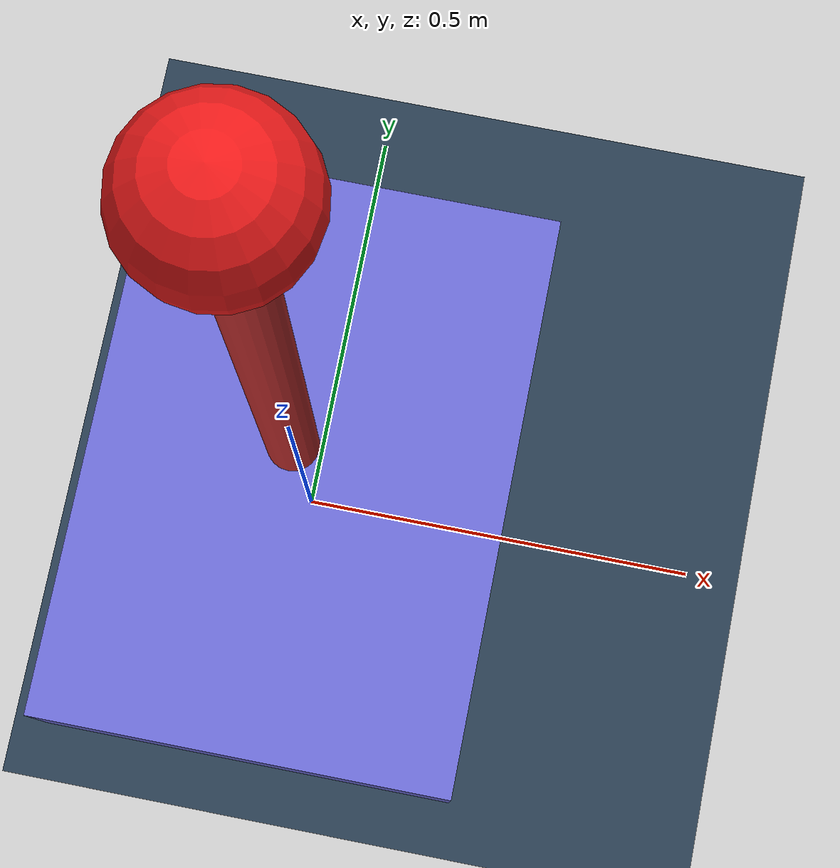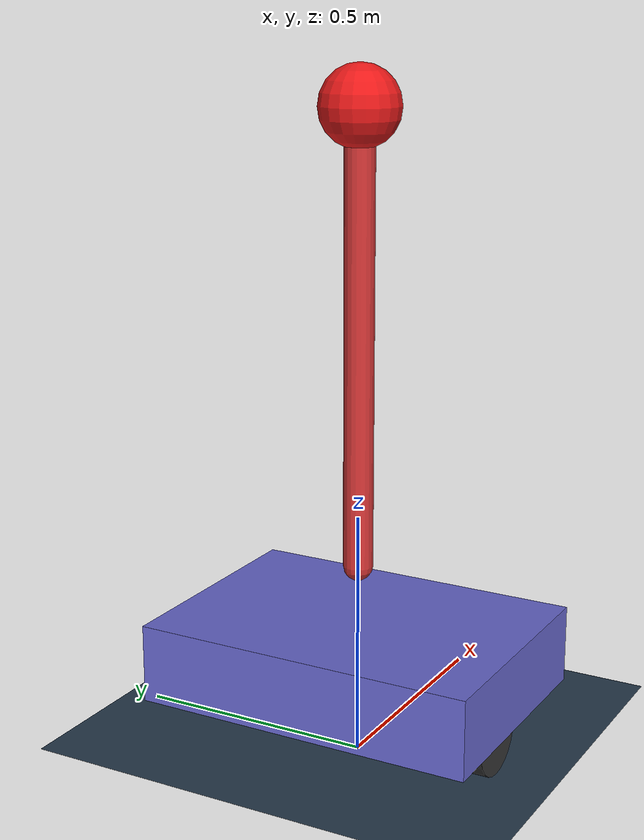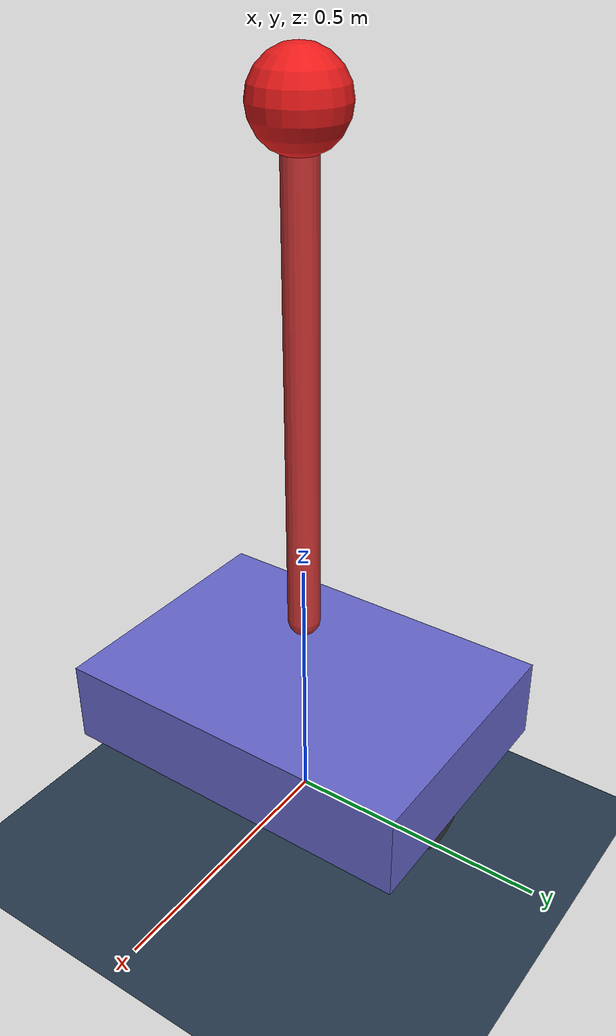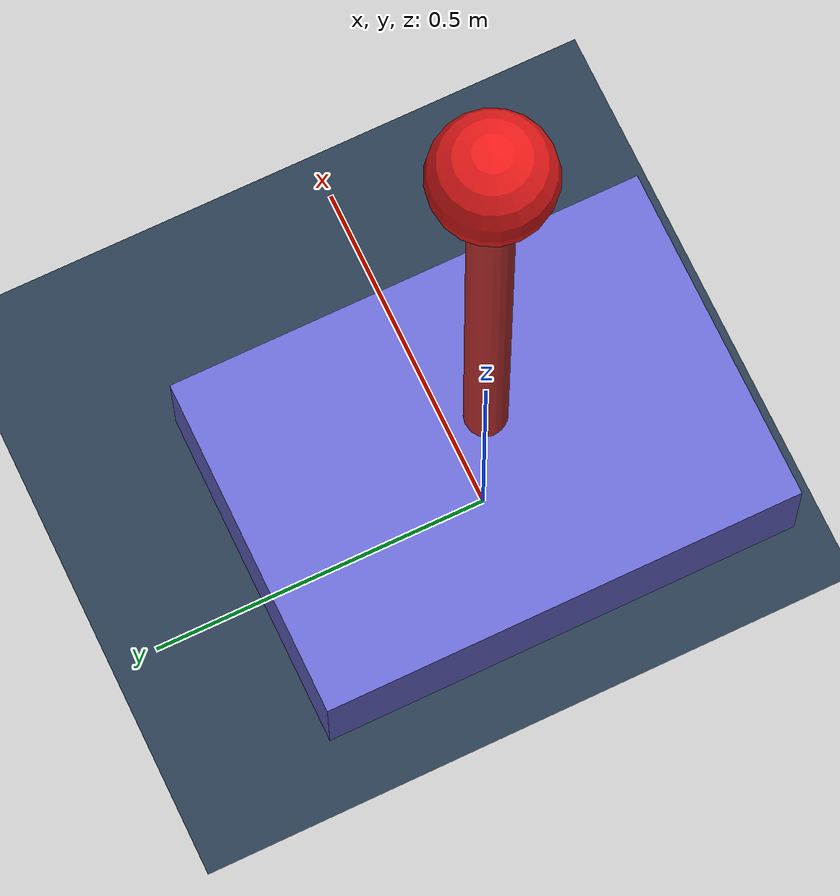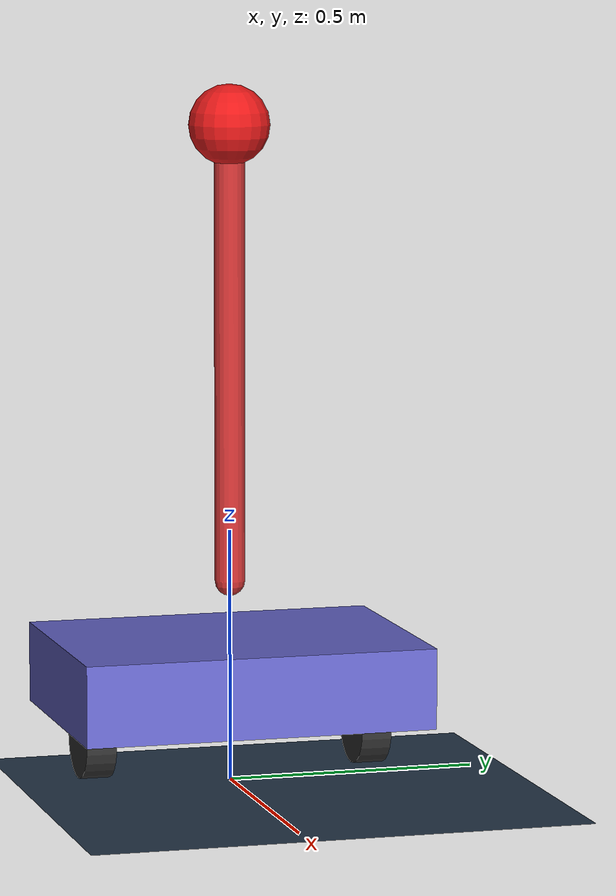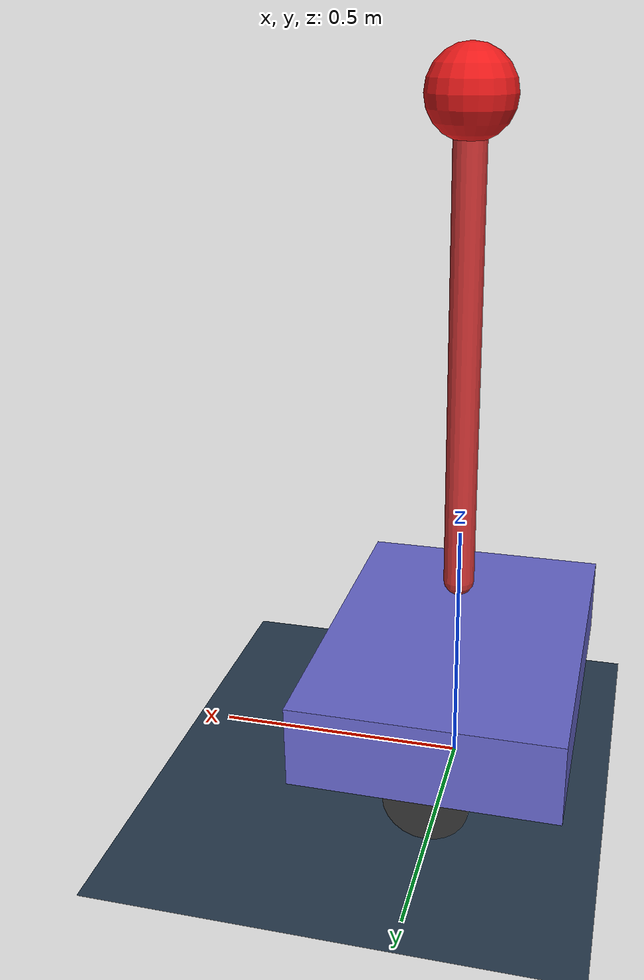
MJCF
<?xml version="1.0" encoding="utf-8"?>
<mujoco model="balancing_robot">

  <compiler angle="degree" inertiafromgeom="true" />

  <option gravity="0 0 -9.81" timestep="0.005" />

  <default>
    <joint damping="0.1" />
    <geom friction="1.0 0.005 0.0001" margin="0.001" />
    <motor ctrllimited="true" />
  </default>

  <asset>
    <texture name="grid" type="2d" builtin="checker" width="512" height="512"
             rgb1="0.2 0.3 0.4" rgb2="0.1 0.15 0.2"/>
    <material name="grid" texture="grid" texrepeat="1 1" texuniform="true" reflectance="0.2"/>
  </asset>

  <worldbody>
    <!-- Ground plane -->
    <geom name="ground" type="plane" pos="0 0 0" size="10 10 0.1" material="grid"/>
    <light directional="true" pos="0 0 3" dir="0 0 -1"/>

    <!-- Robot chassis -->
    <body name="chassis" pos="0 0 0.15">
      <freejoint name="chassis_free"/>

      <!-- Main chassis body -->
      <geom name="chassis_geom" type="box" size="0.25 0.35 0.08" pos="0 0 0.06"
            density="350" rgba="0.4 0.4 0.8 1"/>

      <!-- Left wheel -->
      <body name="wheel_left" pos="0 0.28 -0.05" euler="90 0 0">
        <joint name="left_wheel_joint" type="hinge" axis="0 0 1" damping="0.5"/>
        <geom name="wheel_left_geom" type="cylinder" size="0.08 0.03"
              density="900" rgba="0.2 0.2 0.2 1" friction="2.5 0.01 0.0005"/>
      </body>

      <!-- Right wheel -->
      <body name="wheel_right" pos="0 -0.28 -0.05" euler="90 0 0">
        <joint name="right_wheel_joint" type="hinge" axis="0 0 1" damping="0.5"/>
        <geom name="wheel_right_geom" type="cylinder" size="0.08 0.03"
              density="900" rgba="0.2 0.2 0.2 1" friction="2.5 0.01 0.0005"/>
      </body>

      <!-- Pendulum assembly -->
      <body name="pendulum_base" pos="0 0 0.25">
        <joint name="pendulum_hinge" type="hinge" axis="0 1 0" damping="0.05"/>

        <!-- Pendulum rod -->
        <geom name="pendulum_rod" type="capsule" fromto="0 0 0 0 0 0.9"
              size="0.03" density="80" rgba="0.8 0.2 0.2 0.9"/>

        <!-- Pendulum mass at top -->
        <body name="pendulum_mass" pos="0 0 0.9">
          <geom name="top_mass" type="sphere" size="0.08"
                density="1200" rgba="0.9 0.1 0.1 1"/>
        </body>
      </body>
    </body>
  </worldbody>

  <actuator>
    <!-- Wheel motors -->
    <motor name="left_motor" joint="left_wheel_joint" ctrlrange="-10 10"/>
    <motor name="right_motor" joint="right_wheel_joint" ctrlrange="-10 10"/>
  </actuator>

  <sensor>
    <!-- Basic sensors -->
    <jointpos name="pendulum_angle" joint="pendulum_hinge"/>
    <jointvel name="pendulum_velocity" joint="pendulum_hinge"/>
    <jointvel name="left_wheel_vel" joint="left_wheel_joint"/>
    <jointvel name="right_wheel_vel" joint="right_wheel_joint"/>
  </sensor>

</mujoco>
